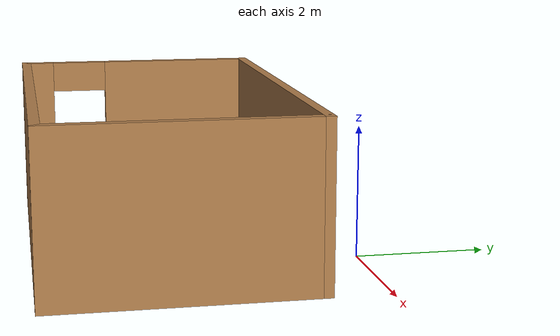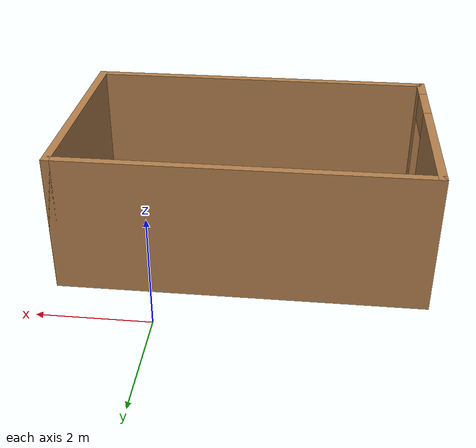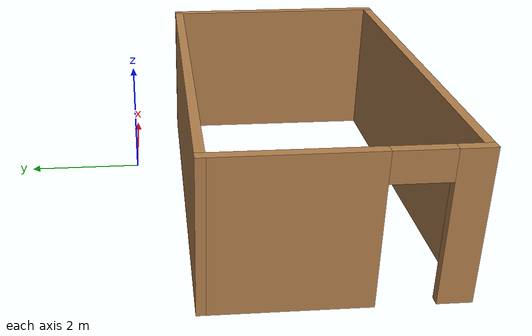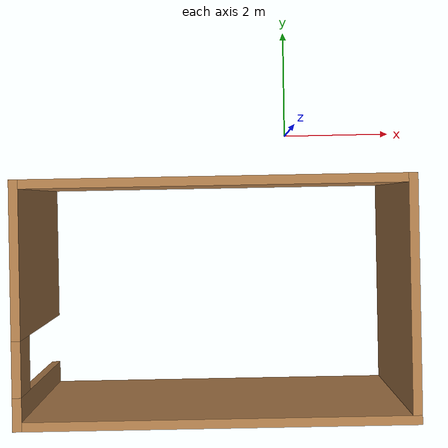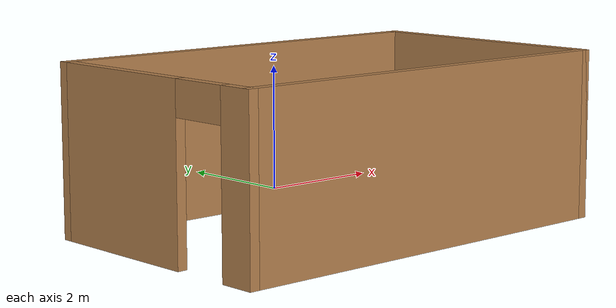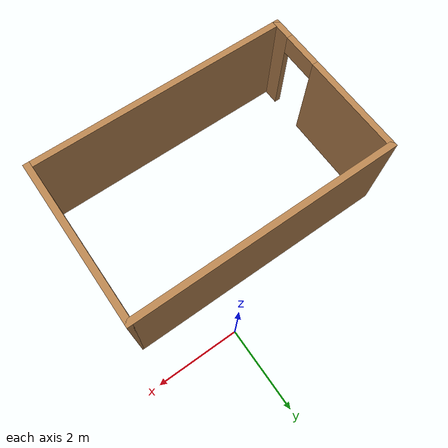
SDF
<?xml version='1.0'?>
<sdf version='1.7'>
  <model name='Arena_Wall'>
    <pose>-1.355 -2.4225 0 0 -0 0</pose>
    <link name='Wall_0'>
      <collision name='Wall_0_Collision'>
        <geometry>
          <box>
            <size>6.5 0.15 2.5</size>
          </box>
        </geometry>
        <pose>0 0 1.25 0 -0 0</pose>
      </collision>
      <visual name='Wall_0_Visual'>
        <pose>0 0 1.25 0 -0 0</pose>
        <geometry>
          <box>
            <size>6.5 0.15 2.5</size>
          </box>
        </geometry>
        <material>
          <script>
            <uri>file://media/materials/scripts/gazebo.material</uri>
            <name>Gazebo/Wood</name>
          </script>
          <ambient>1 1 1 1</ambient>
        </material>
        <meta>
          <layer>0</layer>
        </meta>
      </visual>
      <pose>0 1.5025 0 0 -0 0</pose>
    </link>
    <link name='Wall_6'>
      <pose>-3.175 -0.4225 0 0 -0 -1.5708</pose>
      <visual name='Wall_6_Visual_0'>
        <pose>-0.718424 0 1.25 0 -0 0</pose>
        <geometry>
          <box>
            <size>2.56315 0.15 2.5</size>
          </box>
        </geometry>
        <material>
          <script>
            <uri>file://media/materials/scripts/gazebo.material</uri>
            <name>Gazebo/Wood</name>
          </script>
          <ambient>1 1 1 1</ambient>
        </material>
        <meta>
          <layer>0</layer>
        </meta>
      </visual>
      <collision name='Wall_6_Collision_0'>
        <geometry>
          <box>
            <size>2.56315 0.15 2.5</size>
          </box>
        </geometry>
        <pose>-0.718424 0 1.25 0 -0 0</pose>
      </collision>
      <visual name='Wall_6_Visual_1'>
        <pose>1.73158 0 1.25 0 -0 0</pose>
        <geometry>
          <box>
            <size>0.536848 0.15 2.5</size>
          </box>
        </geometry>
        <material>
          <script>
            <uri>file://media/materials/scripts/gazebo.material</uri>
            <name>Gazebo/Wood</name>
          </script>
          <ambient>1 1 1 1</ambient>
        </material>
        <meta>
          <layer>0</layer>
        </meta>
      </visual>
      <collision name='Wall_6_Collision_1'>
        <geometry>
          <box>
            <size>0.536848 0.15 2.5</size>
          </box>
        </geometry>
        <pose>1.73158 0 1.25 0 -0 0</pose>
      </collision>
      <visual name='Wall_6_Visual_2'>
        <pose>1.01315 0 2.25 0 -0 0</pose>
        <geometry>
          <box>
            <size>0.9 0.15 0.5</size>
          </box>
        </geometry>
        <material>
          <script>
            <uri>file://media/materials/scripts/gazebo.material</uri>
            <name>Gazebo/Wood</name>
          </script>
          <ambient>1 1 1 1</ambient>
        </material>
        <meta>
          <layer>0</layer>
        </meta>
      </visual>
      <collision name='Wall_6_Collision_2'>
        <geometry>
          <box>
            <size>0.9 0.15 0.5</size>
          </box>
        </geometry>
        <pose>1.01315 0 2.25 0 -0 0</pose>
      </collision>
    </link>
    <link name='Wall_7'>
      <collision name='Wall_7_Collision'>
        <geometry>
          <box>
            <size>6.5 0.15 2.5</size>
          </box>
        </geometry>
        <pose>0 0 1.25 0 -0 0</pose>
      </collision>
      <visual name='Wall_7_Visual'>
        <pose>0 0 1.25 0 -0 0</pose>
        <geometry>
          <box>
            <size>6.5 0.15 2.5</size>
          </box>
        </geometry>
        <material>
          <script>
            <uri>file://media/materials/scripts/gazebo.material</uri>
            <name>Gazebo/Wood</name>
          </script>
          <ambient>1 1 1 1</ambient>
        </material>
        <meta>
          <layer>0</layer>
        </meta>
      </visual>
      <pose>0 -2.3475 0 0 -0 0</pose>
    </link>
    <link name='Wall_8'>
      <collision name='Wall_8_Collision'>
        <geometry>
          <box>
            <size>4 0.15 2.5</size>
          </box>
        </geometry>
        <pose>0 0 1.25 0 -0 0</pose>
      </collision>
      <visual name='Wall_8_Visual'>
        <pose>0 0 1.25 0 -0 0</pose>
        <geometry>
          <box>
            <size>4 0.15 2.5</size>
          </box>
        </geometry>
        <material>
          <script>
            <uri>file://media/materials/scripts/gazebo.material</uri>
            <name>Gazebo/Wood</name>
          </script>
          <ambient>1 1 1 1</ambient>
        </material>
        <meta>
          <layer>0</layer>
        </meta>
      </visual>
      <pose>3.175 -0.4225 0 0 -0 1.5708</pose>
    </link>
    <static>1</static>
  </model>
</sdf>
